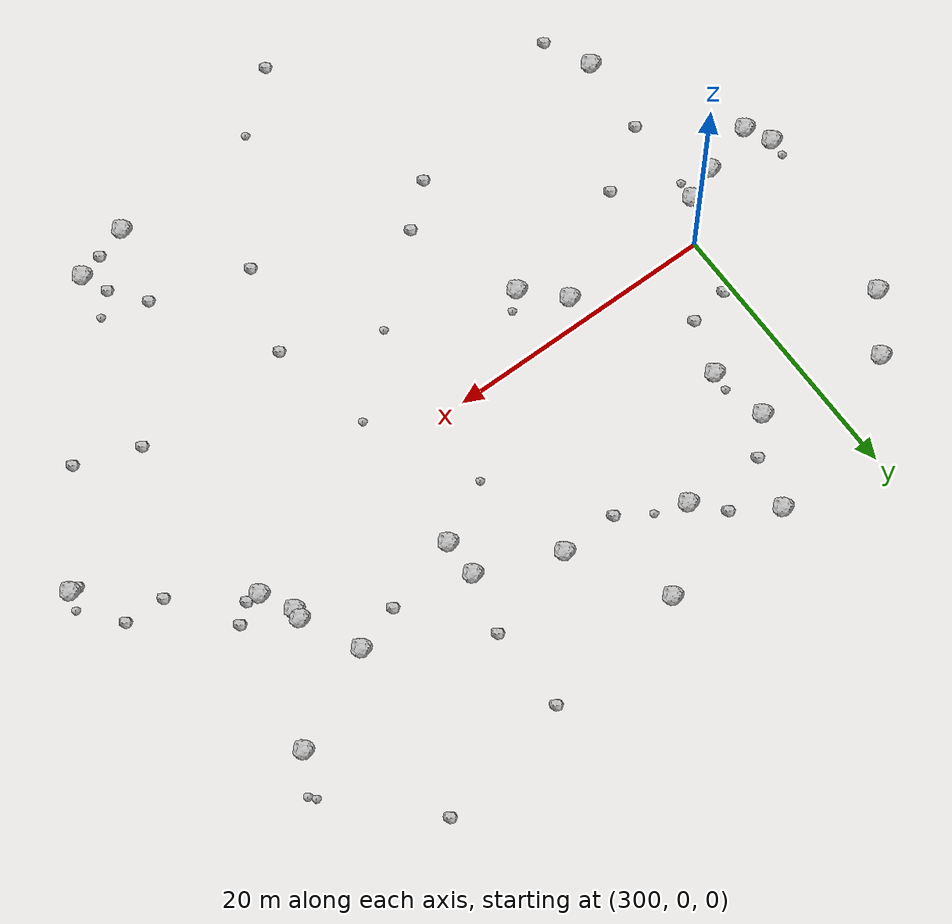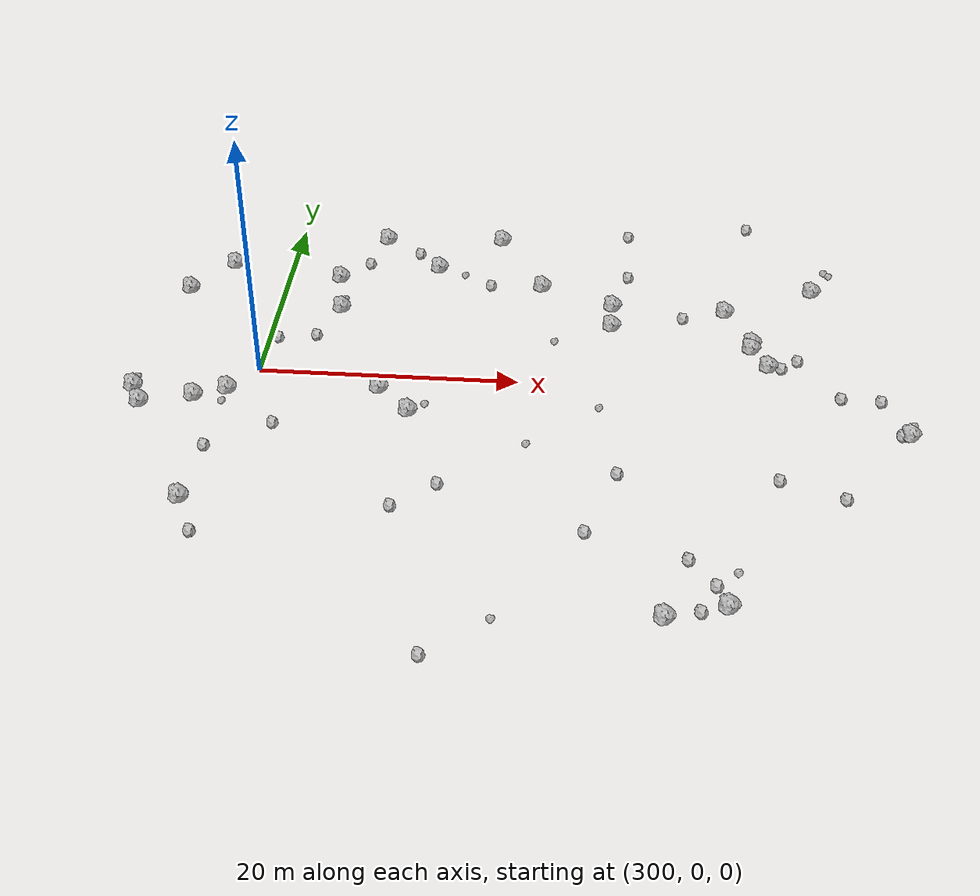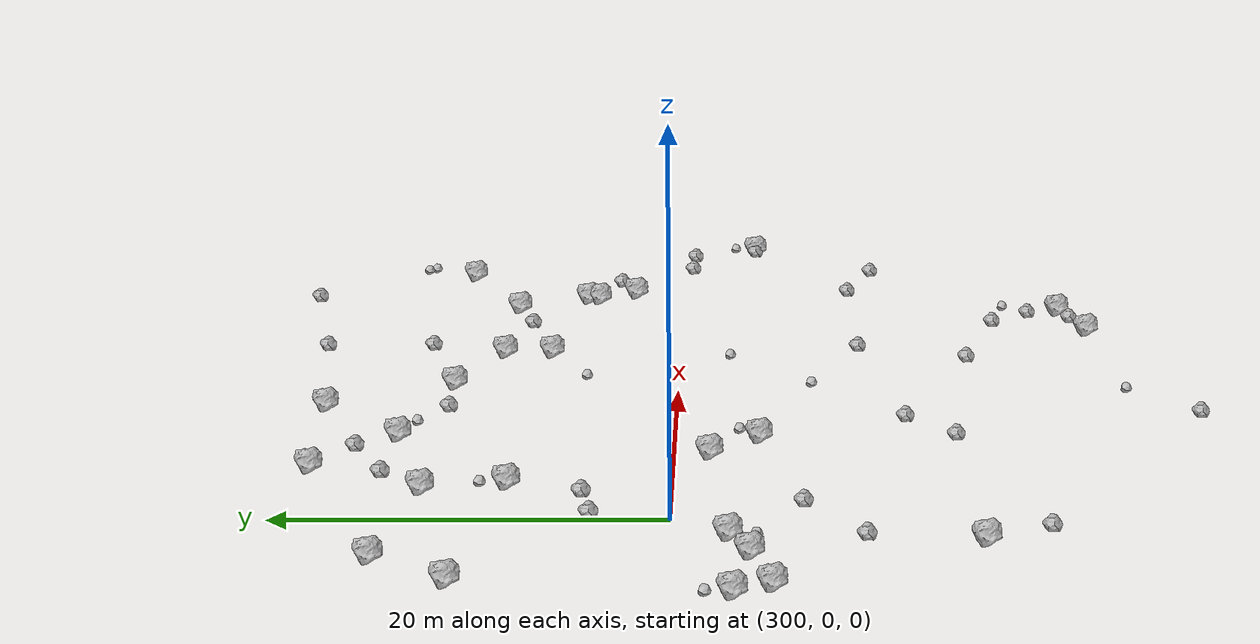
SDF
<sdf version="1.6">
 <world name="default">
  <include><uri>model://sun</uri></include>
  <model name="rock1_8_2">
   <include><uri>model://rock1</uri><pose>290.8677773753254 -3.031400866867571 0.5 0 0 0</pose></include>
  </model>
  <model name="rock1_8_3">
   <include><uri>model://rock1</uri><pose>321.0148497540892 12.781079823963786 0.5 0 0 0</pose></include>
  </model>
  <model name="rock1_8_4">
   <include><uri>model://rock1</uri><pose>297.3980318451954 -15.364463972029922 0.5 0 0 0</pose></include>
  </model>
  <model name="rock1_8_5">
   <include><uri>model://rock1</uri><pose>335.932454191339 10.19897183605751 0.5 0 0 0</pose></include>
  </model>
  <model name="rock1_8_6">
   <include><uri>model://rock1</uri><pose>349.1542863059704 -4.598751285301962 0.5 0 0 0</pose></include>
  </model>
  <model name="rock1_8_7">
   <include><uri>model://rock1</uri><pose>326.8869010121225 10.38805844843688 0.5 0 0 0</pose></include>
  </model>
  <model name="rock1_8_8">
   <include><uri>model://rock1</uri><pose>337.89034455571976 5.328285995834811 0.5 0 0 0</pose></include>
  </model>
  <model name="rock1_8_9">
   <include><uri>model://rock1</uri><pose>331.3151423588962 -24.501292074644223 0.5 0 0 0</pose></include>
  </model>
  <model name="rock1_8_10">
   <include><uri>model://rock1</uri><pose>295.69881281265987 -3.863427546134538 0.5 0 0 0</pose></include>
  </model>
  <model name="rock1_8_11">
   <include><uri>model://rock1</uri><pose>309.5237031417379 -1.8339480501253078 0.5 0 0 0</pose></include>
  </model>
  <model name="rock1_8_12">
   <include><uri>model://rock1</uri><pose>298.05925593957966 -2.8189764168421014 0.5 0 0 0</pose></include>
  </model>
  <model name="rock1_8_13">
   <include><uri>model://rock1</uri><pose>312.08332663514256 -4.476170723635555 0.5 0 0 0</pose></include>
  </model>
  <model name="rock1_8_14">
   <include><uri>model://rock1</uri><pose>337.98109777601985 6.045830493492645 0.5 0 0 0</pose></include>
  </model>
  <model name="rock1_8_15">
   <include><uri>model://rock1</uri><pose>304.2325674593097 12.875130121756094 0.5 0 0 0</pose></include>
  </model>
  <model name="rock1_8_16">
   <include><uri>model://rock1</uri><pose>317.16152980029113 19.587112659071252 0.5 0 0 0</pose></include>
  </model>
  <model name="rock1_8_17">
   <include><uri>model://rock1</uri><pose>335.4978434664227 -23.219397346337733 0.5 0 0 0</pose></include>
  </model>
  <model name="rock1_8_18">
   <include><uri>model://rock1</uri><pose>307.3567344398311 19.025510929376857 0.5 0 0 0</pose></include>
  </model>
  <model name="rock1_8_19">
   <include><uri>model://rock1</uri><pose>339.1359918763674 3.0516090991427305 0.5 0 0 0</pose></include>
  </model>
  <model name="rock1_8_20">
   <include><uri>model://rock1</uri><pose>304.9923744073045 8.555939182442373 0.5 0 0 0</pose></include>
  </model>
  <model name="rock1_8_21">
   <include><uri>model://rock1</uri><pose>291.78738233677217 -4.893512752648327 0.5 0 0 0</pose></include>
  </model>
  <model name="rock1_8_22">
   <include><uri>model://rock1</uri><pose>326.88744617889284 7.612825698440787 0.5 0 0 0</pose></include>
  </model>
  <model name="rock1_8_23">
   <include><uri>model://rock1</uri><pose>292.15782974295274 10.35594590013713 0.5 0 0 0</pose></include>
  </model>
  <model name="rock1_8_24">
   <include><uri>model://rock1</uri><pose>312.2416210142225 14.970422978099826 0.5 0 0 0</pose></include>
  </model>
  <model name="rock1_8_25">
   <include><uri>model://rock1</uri><pose>295.05674205559023 14.31144029875071 0.5 0 0 0</pose></include>
  </model>
  <model name="rock1_8_26">
   <include><uri>model://rock1</uri><pose>343.07413844008425 13.622610472667027 0.5 0 0 0</pose></include>
  </model>
  <model name="rock2_8_0">
   <include><uri>model://rock2</uri><pose>297.8253744318902 -9.587819816363645 0.3 0 0 0</pose></include>
  </model>
  <model name="rock2_8_1">
   <include><uri>model://rock2</uri><pose>340.0978833518463 2.981057231889288 0.3 0 0 0</pose></include>
  </model>
  <model name="rock2_8_2">
   <include><uri>model://rock2</uri><pose>333.66321590017793 -23.759888278269386 0.3 0 0 0</pose></include>
  </model>
  <model name="rock2_8_3">
   <include><uri>model://rock2</uri><pose>343.9027505447018 -12.000030659409504 0.3 0 0 0</pose></include>
  </model>
  <model name="rock2_8_4">
   <include><uri>model://rock2</uri><pose>334.71121635876455 -21.29395791994542 0.3 0 0 0</pose></include>
  </model>
  <model name="rock2_8_5">
   <include><uri>model://rock2</uri><pose>310.3860456252554 17.033595903313064 0.3 0 0 0</pose></include>
  </model>
  <model name="rock2_8_6">
   <include><uri>model://rock2</uri><pose>302.2953728256495 -6.623346200067552 0.3 0 0 0</pose></include>
  </model>
  <model name="rock2_8_7">
   <include><uri>model://rock2</uri><pose>347.3775625389629 -0.6164689051618311 0.3 0 0 0</pose></include>
  </model>
  <model name="rock2_8_8">
   <include><uri>model://rock2</uri><pose>332.5359390220239 9.144009765739469 0.3 0 0 0</pose></include>
  </model>
  <model name="rock2_8_9">
   <include><uri>model://rock2</uri><pose>339.346162540247 -10.331562689743073 0.3 0 0 0</pose></include>
  </model>
  <model name="rock2_8_10">
   <include><uri>model://rock2</uri><pose>327.90058806657066 21.020726709441313 0.3 0 0 0</pose></include>
  </model>
  <model name="rock2_8_11">
   <include><uri>model://rock2</uri><pose>344.3957140433407 -0.500933263296016 0.3 0 0 0</pose></include>
  </model>
  <model name="rock2_8_12">
   <include><uri>model://rock2</uri><pose>327.8502242534147 -10.487947718274114 0.3 0 0 0</pose></include>
  </model>
  <model name="rock2_8_13">
   <include><uri>model://rock2</uri><pose>338.0461656157534 23.0074246749952 0.3 0 0 0</pose></include>
  </model>
  <model name="rock2_8_14">
   <include><uri>model://rock2</uri><pose>303.6438078361752 4.648355596764375 0.3 0 0 0</pose></include>
  </model>
  <model name="rock2_8_15">
   <include><uri>model://rock2</uri><pose>300.67787855121713 4.113669348642347 0.3 0 0 0</pose></include>
  </model>
  <model name="rock2_8_16">
   <include><uri>model://rock2</uri><pose>306.40383733600845 15.186001931981039 0.3 0 0 0</pose></include>
  </model>
  <model name="rock2_8_17">
   <include><uri>model://rock2</uri><pose>315.21294920161193 -12.537302834535854 0.3 0 0 0</pose></include>
  </model>
  <model name="rock2_8_18">
   <include><uri>model://rock2</uri><pose>325.8077431739569 -16.767018552091407 0.3 0 0 0</pose></include>
  </model>
  <model name="rock2_8_19">
   <include><uri>model://rock2</uri><pose>298.9683014814316 -18.727828060629186 0.3 0 0 0</pose></include>
  </model>
  <model name="rock2_8_20">
   <include><uri>model://rock2</uri><pose>315.9596903550169 -28.88994183851751 0.3 0 0 0</pose></include>
  </model>
  <model name="rock2_8_21">
   <include><uri>model://rock2</uri><pose>316.7891949654476 12.68775486762339 0.3 0 0 0</pose></include>
  </model>
  <model name="rock2_8_22">
   <include><uri>model://rock2</uri><pose>341.3835839286728 4.047614459265276 0.3 0 0 0</pose></include>
  </model>
  <model name="rock2_8_23">
   <include><uri>model://rock2</uri><pose>332.872560475834 -18.936786484595377 0.3 0 0 0</pose></include>
  </model>
  <model name="rock2_8_24">
   <include><uri>model://rock2</uri><pose>312.22982069528564 -15.09081418192449 0.3 0 0 0</pose></include>
  </model>
  <model name="rock2_8_25">
   <include><uri>model://rock2</uri><pose>328.01361876336756 14.7445080784113 0.3 0 0 0</pose></include>
  </model>
  <model name="rock2_8_26">
   <include><uri>model://rock2</uri><pose>348.54276124263964 -4.583791762440153 0.3 0 0 0</pose></include>
  </model>
  <model name="rock3_8_0">
   <include><uri>model://rock3</uri><pose>313.19573010748485 -3.449490171565756 0.2 0 0 0</pose></include>
  </model>
  <model name="rock3_8_1">
   <include><uri>model://rock3</uri><pose>290.8499543321972 -1.773358360982428 0.2 0 0 0</pose></include>
  </model>
  <model name="rock3_8_2">
   <include><uri>model://rock3</uri><pose>344.2486864112066 16.76922013101926 0.2 0 0 0</pose></include>
  </model>
  <model name="rock3_8_3">
   <include><uri>model://rock3</uri><pose>321.1181886450184 -7.574198352195726 0.2 0 0 0</pose></include>
  </model>
  <model name="rock3_8_4">
   <include><uri>model://rock3</uri><pose>344.62728952769186 16.314090118646654 0.2 0 0 0</pose></include>
  </model>
  <model name="rock3_8_5">
   <include><uri>model://rock3</uri><pose>297.90246501526394 -4.243393276068282 0.2 0 0 0</pose></include>
  </model>
  <model name="rock3_8_6">
   <include><uri>model://rock3</uri><pose>322.4452336458763 5.294249061985241 0.2 0 0 0</pose></include>
  </model>
  <model name="rock3_8_7">
   <include><uri>model://rock3</uri><pose>320.16035152425724 -25.39766740597299 0.2 0 0 0</pose></include>
  </model>
  <model name="rock3_8_8">
   <include><uri>model://rock3</uri><pose>305.0513865268538 9.905327553995015 0.2 0 0 0</pose></include>
  </model>
  <model name="rock3_8_9">
   <include><uri>model://rock3</uri><pose>326.2664911156944 -2.944269335313688 0.2 0 0 0</pose></include>
  </model>
  <model name="rock3_8_10">
   <include><uri>model://rock3</uri><pose>349.52828630321204 -3.322958044288548 0.2 0 0 0</pose></include>
  </model>
  <model name="rock3_8_11">
   <include><uri>model://rock3</uri><pose>314.4748887419404 14.149892545440814 0.2 0 0 0</pose></include>
  </model>
  <model name="rock3_8_12">
   <include><uri>model://rock3</uri><pose>336.17034956707727 -19.919882177694646 0.2 0 0 0</pose></include>
  </model>
 </world>
</sdf>
